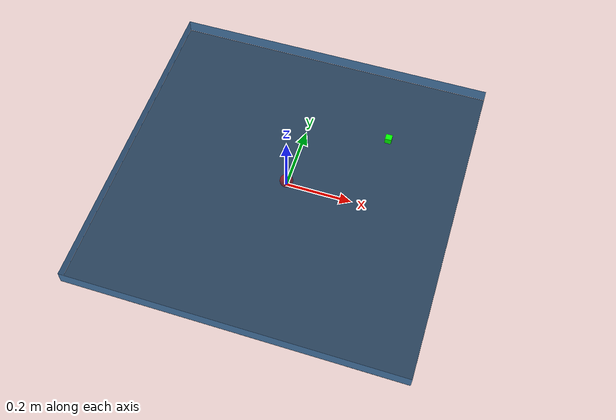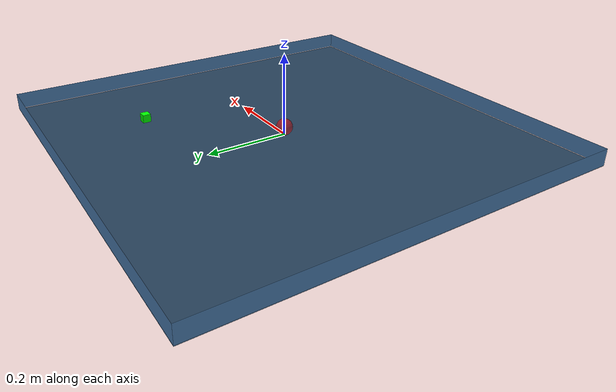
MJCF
<mujoco model="walled arena">
  <default>
    <default class="/"/>
    <default class="pointmass/"/>
  </default>
  <asset>
    <texture name="grid" type="2d" builtin="checker" rgb1="0.10000000000000001 0.20000000000000001 0.29999999999999999" rgb2="0.20000000000000001 0.29999999999999999 0.40000000000000002" mark="edge" markrgb="0.20000000000000001 0.29999999999999999 0.40000000000000002" width="300" height="300"/>
    <material name="grid" class="/" texture="grid" texrepeat="1 1" texuniform="true" reflectance="0"/>
    <material name="decoration" class="/" rgba="0.29999999999999999 0.5 0.69999999999999996 1"/>
  </asset>
  <worldbody>
    <light name="light0" class="/" pos="0.25 0.25 1"/>
    <light name="light1" class="/" pos="-0.25 -0.25 1"/>
    <camera name="fixed" class="/" pos="0 0 0.75" quat="1 0 0 0"/>
    <geom name="ground" class="/" type="plane" size="0.5 0.5 0.10000000000000001" material="grid" pos="0 0 0"/>
    <geom name="wall_x" class="/" type="plane" size="0.02 0.5 0.02" material="decoration" pos="-0.5 0 0.02" zaxis="1 0 0"/>
    <geom name="wall_y" class="/" type="plane" size="0.5 0.02 0.02" material="decoration" pos="0 -0.5 0.02" zaxis="0 1 0"/>
    <geom name="wall_neg_x" class="/" type="plane" size="0.02 0.5 0.02" material="decoration" pos="0.5 0 0.02" zaxis="-1 0 0"/>
    <geom name="wall_neg_y" class="/" type="plane" size="0.5 0.02 0.02" material="decoration" pos="0 0.5 0.02" zaxis="0 -1 0"/>
    <body name="pointmass_mocap" mocap="true" pos="0 0 0">
      <site name="//unnamed_site_0" class="/" type="sphere" size="0.0050000000000000001"/>
    </body>
    <body name="pointmass/">
      <body name="pointmass/pointmass_body" pos="0 0 0.02">
        <geom name="pointmass//unnamed_geom_0" class="pointmass/" type="sphere" size="0.02" rgba="255 0 0 0.5" mass="0.10000000000000001"/>
        <joint name="pointmass/pointmass_x" class="pointmass/" type="slide" axis="1 0 0"/>
        <joint name="pointmass/pointmass_y" class="pointmass/" type="slide" axis="0 1 0"/>
      </body>
    </body>
    <site name="target" class="/" type="box" rgba="0 255 0 1" size="0.01 0.01 0.01" pos="0.25 0.25 0.01"/>
  </worldbody>
  <equality>
    <weld name="mocap_to_mass_weld" class="/" body1="pointmass_mocap" body2="pointmass/pointmass_body"/>
  </equality>
</mujoco>
